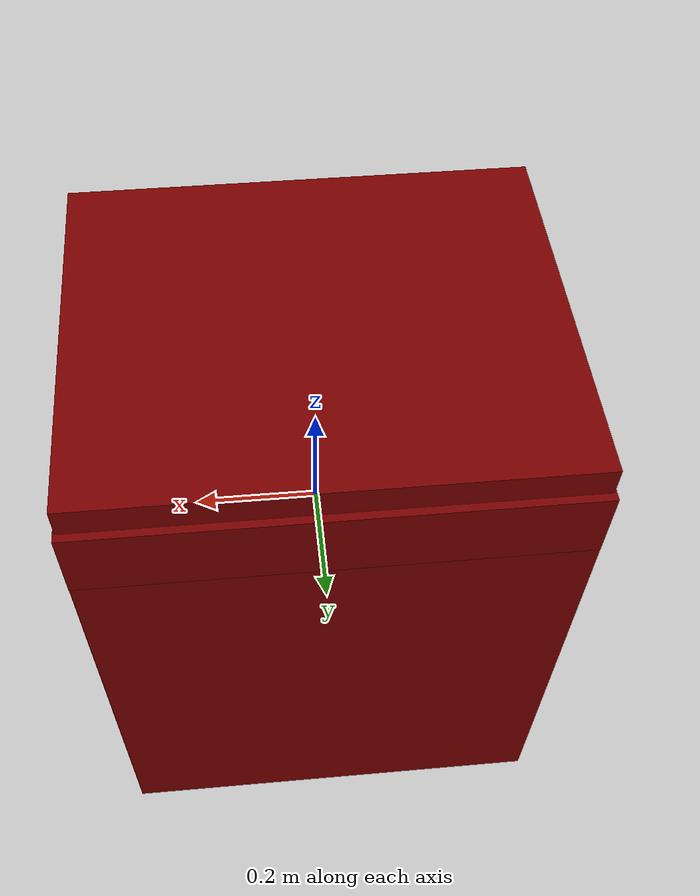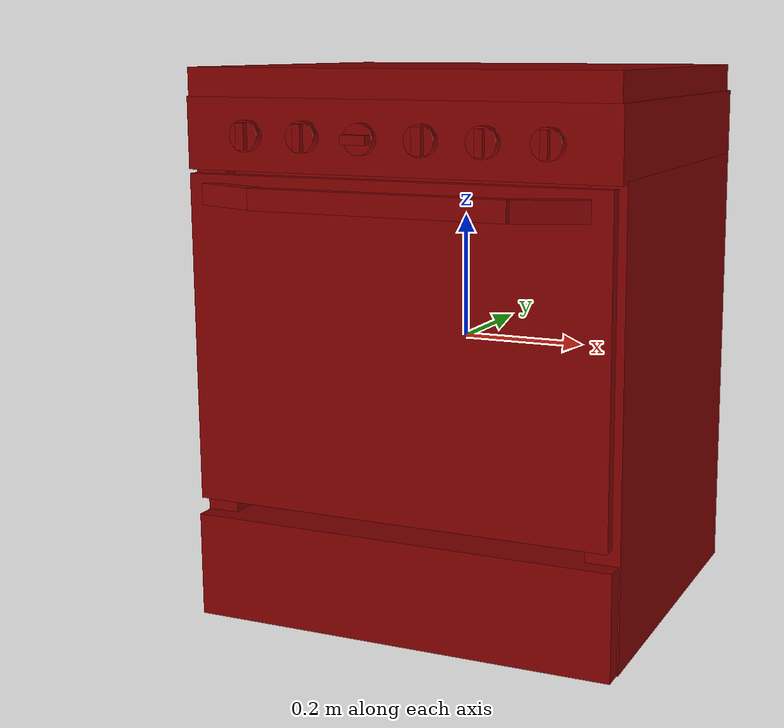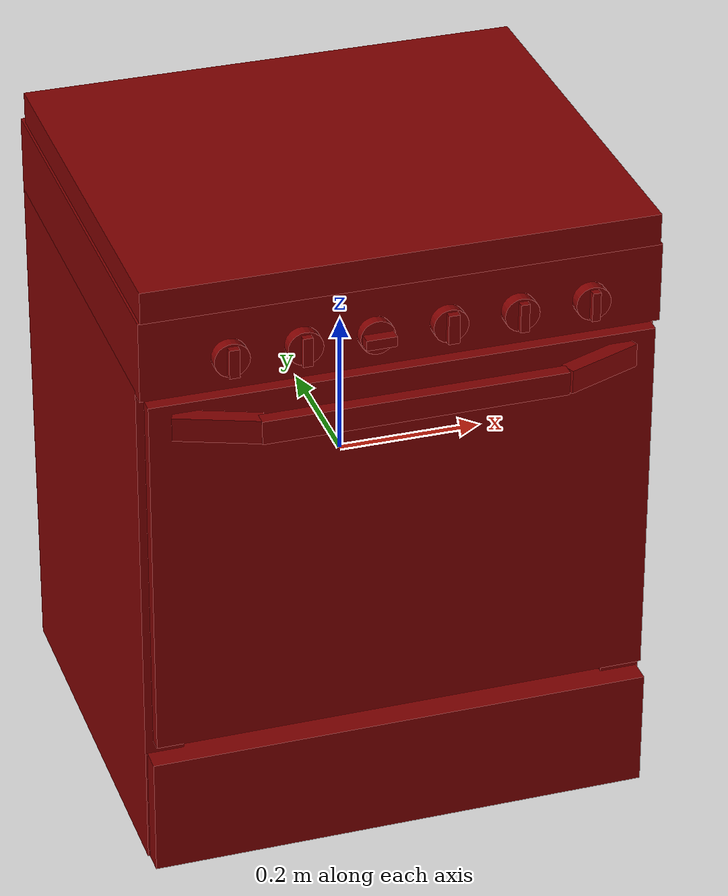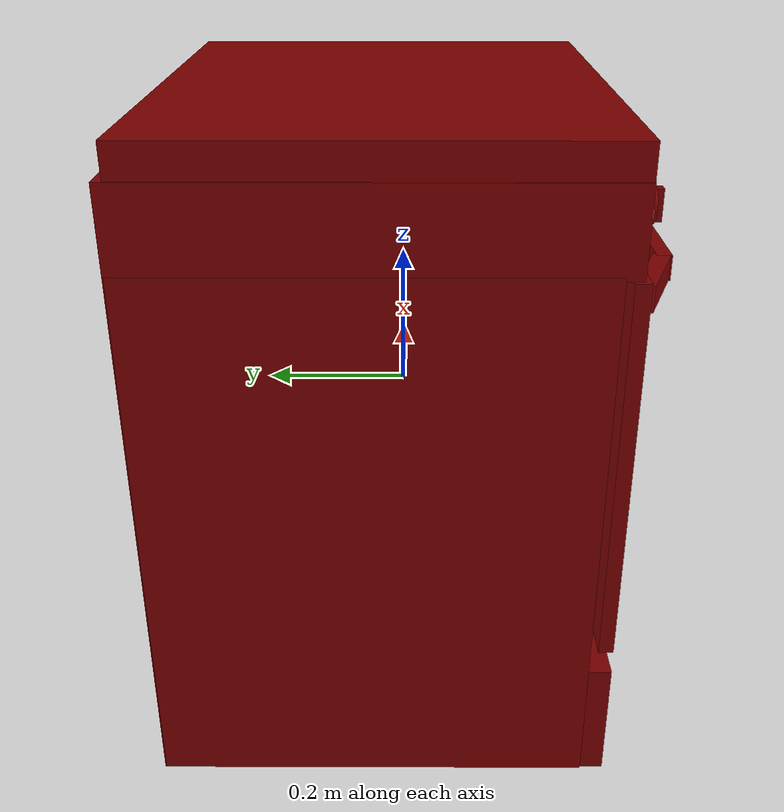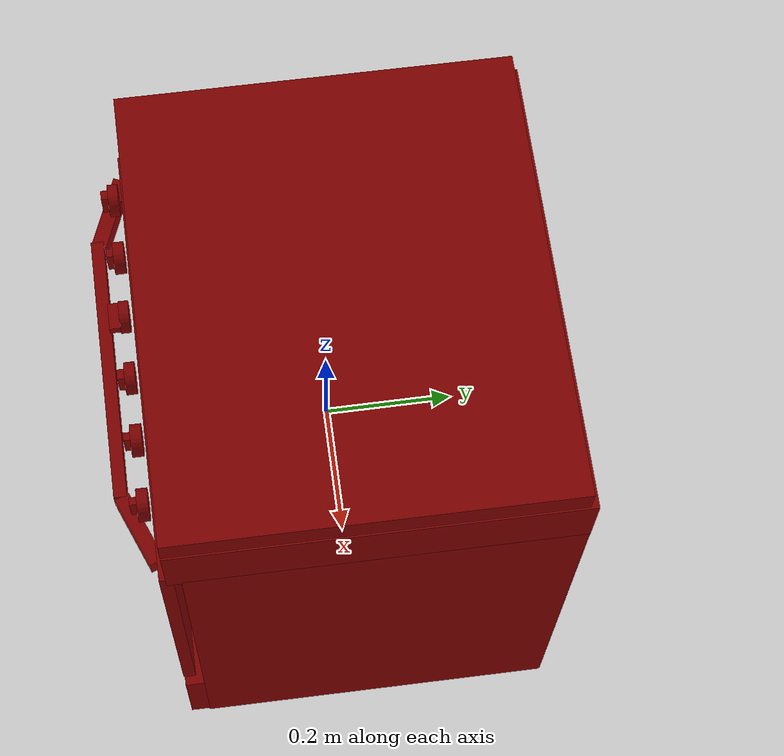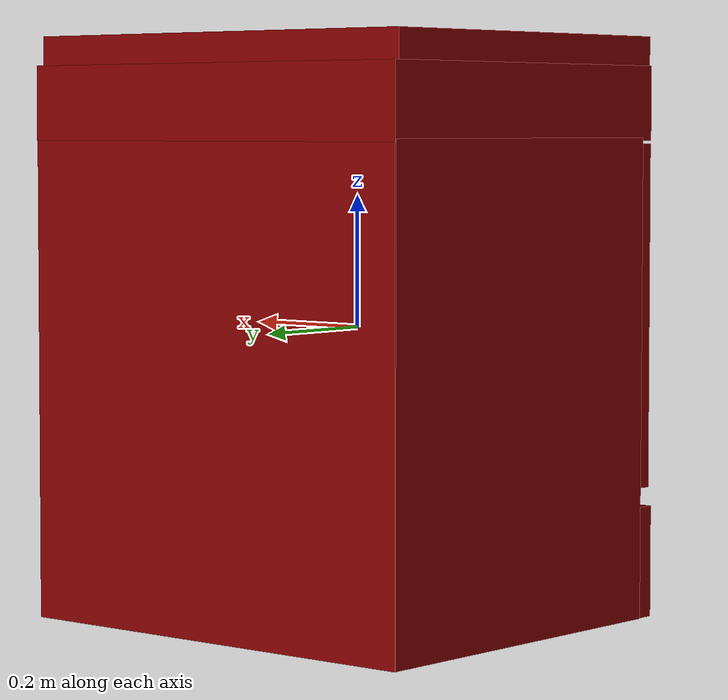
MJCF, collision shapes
<?xml version='1.0' encoding='UTF-8'?>
<mujoco model="model">
  <option timestep="0.002" gravity="0.0 0.0 -9.81"/>
  <compiler angle="radian"/>
  <asset>
    <mesh file="visuals/door.obj" name="door_vis"/>
    <mesh file="visuals/door_Clear.obj" name="door_Clear_vis"/>
    <mesh file="visuals/knob_front_left.obj" name="knob_front_left_vis"/>
    <mesh file="visuals/knob_front_right.obj" name="knob_front_right_vis"/>
    <mesh file="visuals/knob_rear_left.obj" name="knob_rear_left_vis"/>
    <mesh file="visuals/knob_rear_right.obj" name="knob_rear_right_vis"/>
    <mesh file="visuals/knob_temp.obj" name="knob_temp_vis"/>
    <mesh file="visuals/knob_time.obj" name="knob_time_vis"/>
    <mesh file="visuals/rack0.obj" name="rack0_vis"/>
    <mesh file="visuals/Body001.obj" name="Body001_vis"/>
    <texture file="visuals/T_BC001.png" name="Body001_material" type="2d"/>
    <material name="Body001_material" rgba="1 1 1 1.0" texture="Body001_material" shininess="0.4472135901451111" specular="0.5"/>
    <texture file="visuals/T_BC001.png" name="door_material" type="2d"/>
    <material name="door_material" rgba="1 1 1 1.0" texture="door_material" shininess="0.4472135901451111" specular="0.5"/>
    <texture file="visuals/T_BC001.png" name="door_Clear_material" type="2d"/>
    <material name="door_Clear_material" rgba="1 1 1 0.8" texture="door_Clear_material" shininess="0.5" specular="0.3103448502657381"/>
    <texture file="visuals/T_BC001.png" name="knob_front_left_material" type="2d"/>
    <material name="knob_front_left_material" rgba="1 1 1 1.0" texture="knob_front_left_material" shininess="0.4472135901451111" specular="0.3103448502657381"/>
    <texture file="visuals/T_BC001.png" name="knob_front_right_material" type="2d"/>
    <material name="knob_front_right_material" rgba="1 1 1 1.0" texture="knob_front_right_material" shininess="0.4472135901451111" specular="0.3103448502657381"/>
    <texture file="visuals/T_BC001.png" name="knob_rear_left_material" type="2d"/>
    <material name="knob_rear_left_material" rgba="1 1 1 1.0" texture="knob_rear_left_material" shininess="0.4472135901451111" specular="0.3103448502657381"/>
    <texture file="visuals/T_BC001.png" name="knob_rear_right_material" type="2d"/>
    <material name="knob_rear_right_material" rgba="1 1 1 1.0" texture="knob_rear_right_material" shininess="0.4472135901451111" specular="0.3103448502657381"/>
    <texture file="visuals/T_BC001.png" name="knob_temp_material" type="2d"/>
    <material name="knob_temp_material" rgba="1 1 1 1.0" texture="knob_temp_material" shininess="0.4472135901451111" specular="0.3103448502657381"/>
    <texture file="visuals/T_BC001.png" name="knob_time_material" type="2d"/>
    <material name="knob_time_material" rgba="1 1 1 1.0" texture="knob_time_material" shininess="0.4472135901451111" specular="0.3103448502657381"/>
    <texture file="visuals/T_BC001.png" name="rack0_material" type="2d"/>
    <material name="rack0_material" rgba="1 1 1 1.0" texture="rack0_material" shininess="0.4472135901451111" specular="5"/>
  </asset>
  <default>
    <default class="visual">
      <geom conaffinity="0" contype="0" group="1" type="mesh"/>
    </default>
    <default class="collision">
      <geom group="0" rgba="0.5 0 0 0.5"/>
    </default>
    <default class="spawn">
      <geom group="0" rgba="1 1 1 0.5" contype="0" conaffinity="0"/>
      <site group="0" rgba="1 1 1 0.5"/>
    </default>
    <default class="region">
      <geom group="1" conaffinity="0" contype="0" rgba="0 1 0 0"/>
    </default>
  </default>
  <worldbody>
    <body>
      <body name="object">
        <geom mesh="Body001_vis" type="mesh" solimp="0.998 0.998 0.001" solref="0.001 1" friction="0.95 0.3 0.1" class="visual" material="Body001_material"/>
        <geom class="collision" type="box" pos="-0.32282367 0.04147497 -0.07543689" size="0.02653951570391655 0.28820371627807617 0.3628617525100708" quat="1.0 0.0 0.0 0.0"/>
        <geom class="collision" type="box" pos="0.32221442 0.04157962 -0.07544962" size="0.02715783752501011 0.28815343976020813 0.36284521222114563" quat="1.0 0.0 0.0 0.0"/>
        <geom class="collision" type="box" pos="0.00000444 0.03152817 0.33864132" size="0.34936392307281494 0.2996480464935303 0.055759914219379425" quat="1.0 0.0 0.0 0.0"/>
        <geom class="collision" type="box" pos="0.00022511 0.01788070 -0.35399633" size="0.3468468487262726 0.2956814467906952 0.08429867029190063" quat="1.0 0.0 0.0 0.0"/>
        <geom class="collision" type="box" pos="-0.00082886 0.04647235 0.25747553" size="0.3056583106517792 0.2670849561691284 0.02249942719936371" quat="1.0 0.0 0.0 0.0"/>
        <geom class="collision" type="box" pos="-0.00082886 0.04650430 -0.22124074" size="0.3038848340511322 0.26707693934440613 0.025592513382434845" quat="1.0 0.0 0.0 0.0"/>
        <geom class="collision" type="box" pos="-0.00036195 0.26407996 -0.07766832" size="0.34876078367233276 0.06709685921669006 0.3606160283088684" quat="1.0 0.0 0.0 0.0"/>
        <geom class="collision" type="box" pos="0.00013610 0.02558133 0.41613687" size="0.3463343381881714 0.2937566041946411 0.02200845442712307" quat="1.0 0.0 0.0 0.0"/>
        <geom class="collision" type="box" pos="-0.29437450 -0.02084528 0.14800775" size="0.00930354930460453 0.1873529851436615 0.004637975711375475" quat="1.0 0.0 0.0 0.0"/>
        <geom class="collision" type="box" pos="-0.29437450 -0.02084528 0.10479981" size="0.00930354930460453 0.1873529851436615 0.004637975711375475" quat="1.0 0.0 0.0 0.0"/>
        <geom class="collision" type="box" pos="-0.29437450 -0.02084528 0.06300852" size="0.00930354930460453 0.1873529851436615 0.004637975711375475" quat="1.0 0.0 0.0 0.0"/>
        <geom class="collision" type="box" pos="-0.29437450 -0.02084528 0.02098112" size="0.00930354930460453 0.1873529851436615 0.004637975711375475" quat="1.0 0.0 0.0 0.0"/>
        <geom class="collision" type="box" pos="-0.29437450 -0.02084528 -0.02057406" size="0.00930354930460453 0.1873529851436615 0.004637975711375475" quat="1.0 0.0 0.0 0.0"/>
        <geom class="collision" type="box" pos="-0.29437450 -0.02084528 -0.06260146" size="0.00930354930460453 0.1873529851436615 0.004637975711375475" quat="1.0 0.0 0.0 0.0"/>
        <geom class="collision" type="box" pos="0.29368198 -0.02084528 -0.06260146" size="0.00930354930460453 0.1873529851436615 0.004637975711375475" quat="1.0 0.0 0.0 0.0"/>
        <geom class="collision" type="box" pos="0.29368198 -0.02084528 -0.02057406" size="0.00930354930460453 0.1873529851436615 0.004637975711375475" quat="1.0 0.0 0.0 0.0"/>
        <geom class="collision" type="box" pos="0.29368198 -0.02084528 0.02098112" size="0.00930354930460453 0.1873529851436615 0.004637975711375475" quat="1.0 0.0 0.0 0.0"/>
        <geom class="collision" type="box" pos="0.29368198 -0.02084528 0.06300852" size="0.00930354930460453 0.1873529851436615 0.004637975711375475" quat="1.0 0.0 0.0 0.0"/>
        <geom class="collision" type="box" pos="0.29368198 -0.02084528 0.10479981" size="0.00930354930460453 0.1873529851436615 0.004637975711375475" quat="1.0 0.0 0.0 0.0"/>
        <geom class="collision" type="box" pos="0.29368198 -0.02084528 0.14800775" size="0.00930354930460453 0.1873529851436615 0.004637975711375475" quat="1.0 0.0 0.0 0.0"/>
        <body name="door">
          <joint axis="1.0 0.0 0.0" pos="0.00000457 -0.27833334 -0.24066589" limited="true" name="door_joint" range="0.0 1.5707963267948966" type="hinge" damping="1" frictionloss="1" armature=".01" stiffness="0.05"/>
          <geom mesh="door_vis" type="mesh" solimp="0.998 0.998 0.001" solref="0.001 1" friction="0.95 0.3 0.1" class="visual" material="door_material"/>
          <geom class="collision" type="box" pos="-0.00082886 -0.24639347 0.02669169" size="0.27123671770095825 0.009919351898133755 0.19373451173305511" quat="1.0 0.0 0.0 0.0"/>
          <geom class="collision" type="box" pos="-0.00061146 -0.26853466 0.01818192" size="0.34081459045410156 0.009919864125549793 0.259625643491745" quat="1.0 0.0 0.0 0.0" name="door_main"/>
          <geom class="collision" type="box" pos="0.00097798 -0.26698184 -0.00460008" size="0.2628186047077179 0.0037432776298373938 0.199416846036911" quat="1.0 0.0 0.0 0.0"/>
          <geom class="collision" type="box" pos="0.25520575 -0.29915416 0.24805956" size="0.0557350218296051 0.011199130676686764 0.016437169164419174" quat="0.9820809364318848 0.0 0.0 0.1884595900774002"/>
          <geom class="collision" type="box" pos="-0.25672275 -0.29846519 0.24805956" size="0.057031355798244476 0.01119912974536419 0.016437169164419174" quat="1.9142196094890096e-07 0.9831273555755615 -0.18292252719402313 -3.5616331217624975e-08"/>
          <geom class="collision" type="box" pos="-0.00219345 -0.32203442 0.24805956" size="0.20576420426368713 0.00958629697561264 0.016437532380223274" quat="1.0 0.0 0.0 0.0" name="door_handle_main"/>
          <body name="door_Clear">
            <geom mesh="door_Clear_vis" type="mesh" solimp="0.998 0.998 0.001" solref="0.001 1" friction="0.95 0.3 0.1" class="visual" material="door_Clear_material"/>
            <geom class="collision" type="box" pos="0.00097798 -0.26698184 -0.00460008" size="0.2628186047077179 0.0037432776298373938 0.199416846036911" quat="1.0 0.0 0.0 0.0"/>
          </body>
        </body>
        <body name="knob_front_left">
          <joint axis="0.0 -1.0 0.0" pos="-0.23487230 -0.29143602 0.33788103" limited="true" name="knob_front_left_joint" range="0.0 3.141592653589793" type="hinge" damping="0.05" frictionloss="0.75" armature="1"/>
          <geom mesh="knob_front_left_vis" type="mesh" solimp="0.998 0.998 0.001" solref="0.001 1" friction="0.95 0.3 0.1" class="visual" material="knob_front_left_material"/>
          <geom class="collision" type="box" pos="-0.23503619 -0.29431963 0.33781037" size="0.006990144029259682 0.010168795473873615 0.020011408254504204" quat="1.0 0.0 0.0 0.0" name="knob_front_left_main" friction="100 0.5 0.01"/>
          <geom class="collision" type="cylinder" pos="-0.23514281 -0.28690979 0.33780241" size="0.023643560707569122 0.0074795992113649845" quat="0.7071068286895752 0.7071067690849304 0.0 0.0" friction="100 0.5 0.01"/>
        </body>
        <body name="knob_front_right">
          <joint axis="0.0 -1.0 0.0" pos="0.24667339 -0.29143602 0.33788103" limited="true" name="knob_front_right_joint" range="0.0 3.141592653589793" type="hinge" damping="0.05" armature="1" frictionloss="0.75"/>
          <geom mesh="knob_front_right_vis" type="mesh" solimp="0.998 0.998 0.001" solref="0.001 1" friction="0.95 0.3 0.1" class="visual" material="knob_front_right_material"/>
          <geom class="collision" type="box" pos="0.24672177 -0.29529023 0.33816034" size="0.005518182646483183 0.009529737755656242 0.02019871212542057" quat="1.0 0.0 0.0 0.0" name="knob_front_right_main" friction="100 0.5 0.01"/>
          <geom class="collision" type="cylinder" pos="0.24671876 -0.28668097 0.33808011" size="0.02354443073272705 0.007998556829988956" quat="0.7071068286895752 0.7071067690849304 0.0 0.0" friction="100 0.5 0.01"/>
        </body>
        <body name="knob_rear_left">
          <joint axis="0.0 -1.0 0.0" pos="-0.13924579 -0.29143602 0.33788103" limited="true" name="knob_rear_left_joint" range="0.0 3.141592653589793" type="hinge" damping="0.05" armature="1" frictionloss="0.75"/>
          <geom mesh="knob_rear_left_vis" type="mesh" solimp="0.998 0.998 0.001" solref="0.001 1" friction="0.95 0.3 0.1" class="visual" material="knob_rear_left_material"/>
          <geom class="collision" type="box" pos="-0.13901696 -0.29732338 0.33790261" size="0.006420934107154608 0.007175837643444538 0.020258767530322075" quat="1.0 0.0 0.0 0.0" name="knob_rear_left_main" friction="100 0.5 0.01"/>
          <geom class="collision" type="cylinder" pos="-0.13892181 -0.28667468 0.33834854" size="0.02362123504281044 0.008074896410107613" quat="0.7071068286895752 0.7071067690849304 0.0 0.0" friction="100 0.5 0.01"/>
        </body>
        <body name="knob_rear_right">
          <joint axis="0.0 -1.0 0.0" pos="0.15003626 -0.29143602 0.33788103" limited="true" name="knob_rear_right_joint" range="0.0 3.141592653589793" type="hinge" damping="0.05" frictionloss="0.75" armature="1"/>
          <geom mesh="knob_rear_right_vis" type="mesh" solimp="0.998 0.998 0.001" solref="0.001 1" friction="0.95 0.3 0.1" class="visual" material="knob_rear_right_material"/>
          <geom class="collision" type="box" pos="0.14990221 -0.29516465 0.33784384" size="0.005885318387299776 0.00947743933647871 0.019870391115546227" quat="1.0 0.0 0.0 0.0" name="knob_rear_right_main" friction="100 0.5 0.01"/>
          <geom class="collision" type="cylinder" pos="0.14983241 -0.28679445 0.33807832" size="0.023539787158370018 0.008175491355359554" quat="0.7071068286895752 0.7071067690849304 0.0 0.0" friction="100 0.5 0.01"/>
        </body>
        <body name="knob_temp">
          <joint axis="0.0 1.0 0.0" pos="0.05379827 -0.29143602 0.33840180" limited="true" name="knob_temp_joint" range="0.0 5.585053606381854" type="hinge" damping="0.05" frictionloss="0.75" armature="1"/>
          <geom mesh="knob_temp_vis" type="mesh" solimp="0.998 0.998 0.001" solref="0.001 1" friction="0.95 0.3 0.1" class="visual" material="knob_temp_material"/>
          <geom class="collision" type="box" pos="0.05459414 -0.29730135 0.33799330" size="0.007460564374923706 0.007712912745773792 0.02035648748278618" quat="1.0 0.0 0.0 0.0" name="knob_temp_main" friction="100 0.5 0.01"/>
          <geom class="collision" type="cylinder" pos="0.05390051 -0.28730738 0.33807943" size="0.02359602600336075 0.00766044482588768" quat="0.7071068286895752 0.7071067690849304 0.0 0.0" friction="100 0.5 0.01"/>
        </body>
        <body name="knob_time">
          <joint axis="0.0 1.0 0.0" pos="-0.04357286 -0.29143602 0.33788103" limited="true" name="knob_time_joint" range="0.0 5.235987755982989" type="hinge" damping="0.05" frictionloss="0.75" armature="1"/>
          <geom mesh="knob_time_vis" type="mesh" solimp="0.998 0.998 0.001" solref="0.001 1" friction="0.95 0.3 0.1" class="visual" material="knob_time_material"/>
          <geom class="collision" type="box" pos="-0.04366319 -0.29832599 0.33763689" size="0.020274225622415543 0.012124400585889816 0.0070205386728048325" quat="1.0 0.0 0.0 0.0" name="knob_time_main" friction="100 0.5 0.01"/>
          <geom class="collision" type="cylinder" pos="-0.04343428 -0.28728694 0.33764342" size="0.02350432612001896 0.007136811502277851" quat="0.7071068286895752 0.7071067690849304 0.0 0.0" friction="100 0.5 0.01"/>
        </body>
        <body name="rack0">
          <geom class="region" name="reg_rack0" type="box" pos="-0.0007805850000000003 -0.027165129999999996 0.13362625" size="0.275944665 0.17203997 0.09568419"/>
          <joint axis="0.0 -1.0 0.0" pos="0.00012213 -0.02422210 0.02607488" limited="true" name="rack0_joint" range="0.0 0.3" type="slide" damping="1" frictionloss="1" armature=".01" stiffness="0.05"/>
          <geom mesh="rack0_vis" type="mesh" solimp="0.998 0.998 0.001" solref="0.001 1" friction="0.95 0.3 0.1" class="visual" material="rack0_material"/>
          <geom class="collision" type="box" pos="-0.00082886 -0.02977718 0.03026787" size="0.28248241543769836 0.18181145191192627 0.004427287727594376" quat="1.0 0.0 0.0 0.0"/>
        </body>
        <geom class="region" name="reg_int" type="box" pos="-0.00040961999999999943 -0.006631164999999994 0.020536109999999996" size="0.28600809 0.197597475 0.20819386"/>
        <site type="cylinder" rgba="0.3 0.4 1 0.5" size="0.05880759283900261 0.006370455492287874" pos="0.16335732 -0.09132203 0.42126134" name="burner_on_front_right"/>
        <site type="cylinder" rgba="0.3 0.4 1 0.5" size="0.03458255156874657 0.006497457157820463" pos="0.16256811 0.14587057 0.42122737" name="burner_on_rear_right"/>
        <site type="cylinder" rgba="0.3 0.4 1 0.5" size="0.03732303902506828 0.0062722801230847836" pos="-0.16138159 0.14583109 0.42103011" name="burner_on_rear_left"/>
        <site type="cylinder" rgba="0.3 0.4 1 0.5" size="0.02817893773317337 0.006410457659512758" pos="-0.16317451 -0.08990106 0.42121661" name="burner_on_front_left"/>
        <site type="cylinder" rgba="0.5 0 0 0" size="0.02817893773317337 4.999999873689376e-05" pos="-0.16317451 -0.08990106 0.43773798" name="burner_front_left_place_site"/>
        <site type="cylinder" rgba="0.5 0 0 0" size="0.05880759283900261 4.999999873689376e-05" pos="0.16335732 -0.09132203 0.43773798" name="burner_front_right_place_site"/>
        <site type="cylinder" rgba="0.5 0 0 0" size="0.03732303902506828 4.999999873689376e-05" pos="-0.16138159 0.14583109 0.43773798" name="burner_rear_left_place_site"/>
        <site type="cylinder" rgba="0.5 0 0 0" size="0.03458255156874657 4.999999873689376e-05" pos="0.16256811 0.14587057 0.43773798" name="burner_rear_right_place_site"/>
        <geom class="region" name="reg_main" type="box" pos="4.544999999994692e-06 0.026236800000000005 -0.02207709500000002" size="0.35036773499999996 0.30594279 0.41722164500000003"/>
      </body>
    </body>
  </worldbody>
  <actuator>
    <motor name="door_joint_actuator" joint="door_joint" gear="50"/>
    <motor name="knob_front_left_joint_actuator" joint="knob_front_left_joint" gear="50"/>
    <motor name="knob_front_right_joint_actuator" joint="knob_front_right_joint" gear="50"/>
    <motor name="knob_rear_left_joint_actuator" joint="knob_rear_left_joint" gear="50"/>
    <motor name="knob_rear_right_joint_actuator" joint="knob_rear_right_joint" gear="50"/>
    <motor name="knob_temp_joint_actuator" joint="knob_temp_joint" gear="50"/>
    <motor name="knob_time_joint_actuator" joint="knob_time_joint" gear="50"/>
    <motor name="rack0_joint_actuator" joint="rack0_joint" gear="50"/>
  </actuator>
</mujoco>
